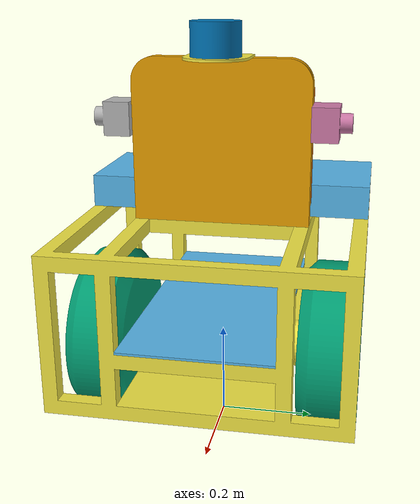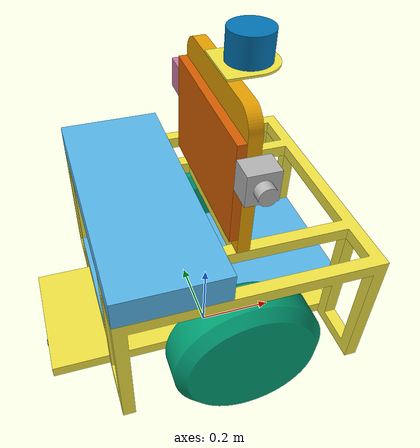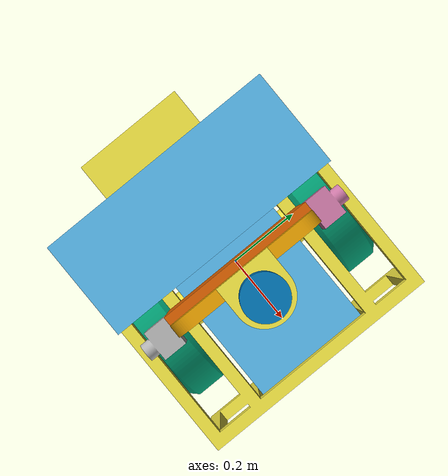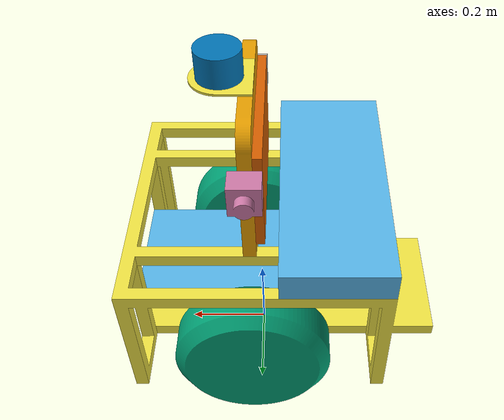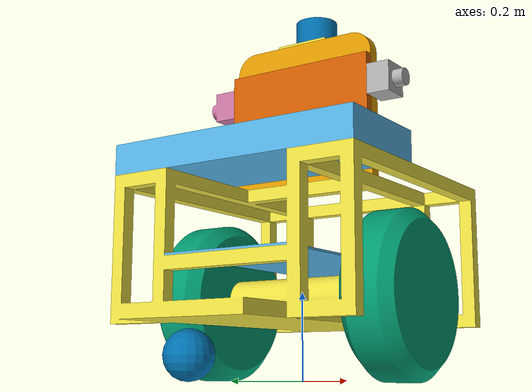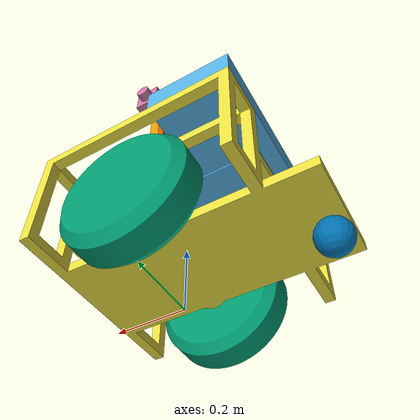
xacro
<?xml version='1.0' encoding='utf-8'?>
    <robot name="sirius">
    <link name="base_link"/>

    <joint name="base_link_to_Frame" type="fixed">
        <parent link="base_link"/>
        <child link="Frame"/>
        <!-- 上に455mm, Z軸で１８０度回転 -->
        <origin xyz="0 0 0.455" rpy="0 0 3.141592653589793"/>
    </joint>

    <link name="MDF">
        <inertial>
            <origin xyz="0.0 0.0 -0.1875" rpy="0.0 0.0 0.0" />
            <mass value="7.300499999999998" />
            <inertia ixx="0.058480046875000025" iyy="0.21903020937500006" izz="0.2774798375" ixy="0.0" iyz="1.4279066817834973e-18" ixz="1.4279066817834973e-18" />
        </inertial>
        <visual name="MDF_visual">
            <origin xyz="0.0 0.0 0.0" rpy="0.0 0.0 0.0" />
            <geometry>
                <mesh filename="package://Sirius_description/meshes/MDF.stl" scale="0.001 0.001 0.001" />
            </geometry>
        </visual>
        <collision name="MDF_collision">
            <origin xyz="0.0 0.0 0.0" rpy="0.0 0.0 0.0" />
            <geometry>
                <mesh filename="package://Sirius_description/meshes/MDF.stl" scale="0.001 0.001 0.001" />
            </geometry>
        </collision>
    </link>
    <link name="Right_Wheel">
        <inertial>
            <origin xyz="-2.4424906541753444e-17 3.552713678800501e-17 0.06249999999999993" rpy="0.0 -0.0 0.0" />
            <mass value="100.05890789374806" />
            <inertia ixx="0.9387204983052868" iyy="0.9387204983053428" izz="1.6349121401939106" ixy="1.9984014443252818e-15" iyz="0.0" ixz="-1.1102230246251565e-16" />
        </inertial>
        <visual name="Right_Wheel_visual">
            <origin xyz="0.015 -0.27 -0.18" rpy="1.5707963267948966 -0.0 0.0" />
            <geometry>
                <mesh filename="package://Sirius_description/meshes/Right_Wheel.stl" scale="0.001 0.001 0.001" />
            </geometry>
        </visual>
        <collision name="Right_Wheel_collision">
            <origin xyz="0.015 -0.27 -0.18" rpy="1.5707963267948966 -0.0 0.0" />
            <geometry>
                <mesh filename="package://Sirius_description/meshes/Right_Wheel.stl" scale="0.001 0.001 0.001" />
            </geometry>
        </collision>
    </link>
    <link name="LiDAR_Support">
        <inertial>
            <origin xyz="-0.052820883669245824 1.1537955902002506e-16 0.3425" rpy="0.0 0.0 0.0" />
            <mass value="0.3093933392343076" />
            <inertia ixx="0.0005861375596076246" iyy="0.000575193141818392" izz="0.0011600415625125382" ixy="-8.146523068880001e-19" iyz="-8.366640713575181e-19" ixz="-1.734723475976807e-18" />
        </inertial>
        <visual name="LiDAR_Support_visual">
            <origin xyz="0.0 0.0 0.0" rpy="0.0 0.0 0.0" />
            <geometry>
                <mesh filename="package://Sirius_description/meshes/LiDAR_Support.stl" scale="0.001 0.001 0.001" />
            </geometry>
        </visual>
        <collision name="LiDAR_Support_collision">
            <origin xyz="0.0 0.0 0.0" rpy="0.0 0.0 0.0" />
            <geometry>
                <mesh filename="package://Sirius_description/meshes/LiDAR_Support.stl" scale="0.001 0.001 0.001" />
            </geometry>
        </collision>
    </link>
    <link name="LiDAR">
        <inertial>
            <origin xyz="-0.07 -2.4125096250508447e-17 0.37599999999999995" rpy="0.0 0.0 0.0" />
            <mass value="4.439070419522379" />
            <inertia ixx="0.004692097433435238" iyy="0.004692097433435571" izz="0.005548838024402897" ixy="-1.0709300113376216e-18" iyz="-1.7134880181401884e-18" ixz="0.0" />
        </inertial>
        <visual name="LiDAR_visual">
            <origin xyz="0.0 0.0 0.0" rpy="0.0 0.0 0.0" />
            <geometry>
                <mesh filename="package://Sirius_description/meshes/LiDAR.stl" scale="0.001 0.001 0.001" />
            </geometry>
        </visual>
        <collision name="LiDAR_collision">
            <origin xyz="0.0 0.0 0.0" rpy="0.0 0.0 0.0" />
            <geometry>
                <mesh filename="package://Sirius_description/meshes/LiDAR.stl" scale="0.001 0.001 0.001" />
            </geometry>
        </collision>
    </link>
    <link name="Display">
        <inertial>
            <origin xyz="0.009999999999999998 0.0 0.16" rpy="0.0 0.0 0.0" />
            <mass value="13.941599999999996" />
            <inertia ixx="0.22597009999999979" iyy="0.06738439999999996" izz="0.1595151399999998" ixy="0.0" iyz="4.5693013817071915e-17" ixz="3.469446951953614e-18" />
        </inertial>
        <visual name="Display_visual">
            <origin xyz="0.0 0.0 0.0" rpy="0.0 0.0 0.0" />
            <geometry>
                <mesh filename="package://Sirius_description/meshes/Display.stl" scale="0.001 0.001 0.001" />
            </geometry>
        </visual>
        <collision name="Display_collision">
            <origin xyz="0.0 0.0 0.0" rpy="0.0 0.0 0.0" />
            <geometry>
                <mesh filename="package://Sirius_description/meshes/Display.stl" scale="0.001 0.001 0.001" />
            </geometry>
        </collision>
    </link>
    <link name="Left_ESB">
        <inertial>
            <origin xyz="-0.014999999999999998 -0.21667604038411042 0.215" rpy="0.0 0.0 0.0" />
            <mass value="2.3621900233067987" />
            <inertia ixx="0.0017880560898025089" iyy="0.0017770425879946872" izz="0.0017880560898024533" ixy="0.0" iyz="0.0" ixz="-1.734723475976807e-18" />
        </inertial>
        <visual name="Left_ESB_visual">
            <origin xyz="0.0 0.0 0.0" rpy="0.0 0.0 0.0" />
            <geometry>
                <mesh filename="package://Sirius_description/meshes/Left_ESB.stl" scale="0.001 0.001 0.001" />
            </geometry>
        </visual>
        <collision name="Left_ESB_collision">
            <origin xyz="0.0 0.0 0.0" rpy="0.0 0.0 0.0" />
            <geometry>
                <mesh filename="package://Sirius_description/meshes/Left_ESB.stl" scale="0.001 0.001 0.001" />
            </geometry>
        </collision>
    </link>
    <link name="Right_ESB">
        <inertial>
            <origin xyz="-0.014999999999999998 0.21667604038411042 0.215" rpy="0.0 0.0 0.0" />
            <mass value="2.3621900233067987" />
            <inertia ixx="0.0017880560898025089" iyy="0.0017770425879946872" izz="0.001788056089802481" ixy="-1.734723475976807e-18" iyz="0.0" ixz="-1.734723475976807e-18" />
        </inertial>
        <visual name="Right_ESB_visual">
            <origin xyz="0.0 0.0 0.0" rpy="0.0 0.0 0.0" />
            <geometry>
                <mesh filename="package://Sirius_description/meshes/Right_ESB.stl" scale="0.001 0.001 0.001" />
            </geometry>
        </visual>
        <collision name="Right_ESB_collision">
            <origin xyz="0.0 0.0 0.0" rpy="0.0 0.0 0.0" />
            <geometry>
                <mesh filename="package://Sirius_description/meshes/Right_ESB.stl" scale="0.001 0.001 0.001" />
            </geometry>
        </collision>
    </link>
    <link name="Display_Bg">
        <inertial>
            <origin xyz="-0.014999999999999998 0.0 0.16863359351883772" rpy="0.0 0.0 0.0" />
            <mass value="29.373206337400482" />
            <inertia ixx="0.6092684729448462" iyy="0.2811472839601523" izz="0.3325271699353042" ixy="2.2846506908535957e-17" iyz="0.0" ixz="1.3877787807814457e-17" />
        </inertial>
        <visual name="Display_Bg_visual">
            <origin xyz="0.0 0.0 0.0" rpy="0.0 0.0 0.0" />
            <geometry>
                <mesh filename="package://Sirius_description/meshes/Display_Bg.stl" scale="0.001 0.001 0.001" />
            </geometry>
        </visual>
        <collision name="Display_Bg_collision">
            <origin xyz="0.0 0.0 0.0" rpy="0.0 0.0 0.0" />
            <geometry>
                <mesh filename="package://Sirius_description/meshes/Display_Bg.stl" scale="0.001 0.001 0.001" />
            </geometry>
        </collision>
    </link>
    <link name="Case">
        <inertial>
            <origin xyz="0.17500000000000002 0.0 0.035" rpy="0.0 0.0 0.0" />
            <mass value="83.79874999999998" />
            <inertia ixx="2.6326773958333343" iyy="0.47066964583333304" izz="3.034911395833333" ixy="0.0" iyz="-1.8277205526828766e-16" ixz="1.1102230246251565e-16" />
        </inertial>
        <visual name="Case_visual">
            <origin xyz="0.0 0.0 0.0" rpy="0.0 0.0 0.0" />
            <geometry>
                <mesh filename="package://Sirius_description/meshes/Case.stl" scale="0.001 0.001 0.001" />
            </geometry>
        </visual>
        <collision name="Case_collision">
            <origin xyz="0.0 0.0 0.0" rpy="0.0 0.0 0.0" />
            <geometry>
                <mesh filename="package://Sirius_description/meshes/Case.stl" scale="0.001 0.001 0.001" />
            </geometry>
        </collision>
    </link>
    <link name="Left_Wheel">
        <inertial>
            <origin xyz="-2.4424906541753444e-17 -3.552713678800501e-17 0.0625" rpy="0.0 -0.0 0.0" />
            <mass value="100.05890789374806" />
            <inertia ixx="0.9387204983052886" iyy="0.9387204983053437" izz="1.6349121401939106" ixy="-1.9984014443252818e-15" iyz="-2.6645352591003757e-15" ixz="-5.551115123125783e-17" />
        </inertial>
        <visual name="Left_Wheel_visual">
            <origin xyz="0.015 0.27 -0.18" rpy="-1.5707963267948966 -0.0 0.0" />
            <geometry>
                <mesh filename="package://Sirius_description/meshes/Left_Wheel.stl" scale="0.001 0.001 0.001" />
            </geometry>
        </visual>
        <collision name="Left_Wheel_collision">
            <origin xyz="0.015 0.27 -0.18" rpy="-1.5707963267948966 -0.0 0.0" />
            <geometry>
                <mesh filename="package://Sirius_description/meshes/Left_Wheel.stl" scale="0.001 0.001 0.001" />
            </geometry>
        </collision>
    </link>
    <link name="Frame">
        <inertial>
            <origin xyz="0.02336046562605979 -3.391591384159738e-16 -0.22499410556332286" rpy="0.0 0.0 0.0" />
            <mass value="121.25196634073023" />
            <inertia ixx="4.632371381951651" iyy="7.237356930641641" izz="8.42852456545905" ixy="-2.4355492145103126e-14" iyz="-9.826421981859261e-16" ixz="0.4667578254363328" />
        </inertial>
        <visual name="Frame_visual">
            <origin xyz="0.0 0.0 0.0" rpy="0.0 0.0 0.0" />
            <geometry>
                <mesh filename="package://Sirius_description/meshes/Frame.stl" scale="0.001 0.001 0.001" />
            </geometry>
        </visual>
        <collision name="Frame_collision">
            <origin xyz="0.0 0.0 0.0" rpy="0.0 0.0 0.0" />
            <geometry>
                <mesh filename="package://Sirius_description/meshes/Frame.stl" scale="0.001 0.001 0.001" />
            </geometry>
        </collision>
    </link>
    <joint name="Frame_to_Case" type="fixed">
        <origin xyz="0.0 0.0 0.0" rpy="0.0 0.0 0.0" />
        <parent link="Frame" />
        <child link="Case" />
    </joint>
    <joint name="Frame_to_Display" type="fixed">
        <origin xyz="0.0 0.0 0.0" rpy="0.0 0.0 0.0" />
        <parent link="Frame" />
        <child link="Display" />
    </joint>
    <joint name="Frame_to_Display_Bg" type="fixed">
        <origin xyz="0.0 0.0 0.0" rpy="0.0 0.0 0.0" />
        <parent link="Frame" />
        <child link="Display_Bg" />
    </joint>
    <joint name="Frame_to_LiDAR_Support" type="fixed">
        <origin xyz="0.0 0.0 0.0" rpy="0.0 0.0 0.0" />
        <parent link="Frame" />
        <child link="LiDAR_Support" />
    </joint>
    <joint name="Frame_to_LiDAR" type="fixed">
        <origin xyz="0.0 0.0 0.0" rpy="0.0 0.0 0.0" />
        <parent link="Frame" />
        <child link="LiDAR" />
    </joint>
    <joint name="Frame_to_Left_ESB" type="fixed">
        <origin xyz="0.0 0.0 0.0" rpy="0.0 0.0 0.0" />
        <parent link="Frame" />
        <child link="Left_ESB" />
    </joint>
    <joint name="Frame_to_Right_ESB" type="fixed">
        <origin xyz="0.0 0.0 0.0" rpy="0.0 0.0 0.0" />
        <parent link="Frame" />
        <child link="Right_ESB" />
    </joint>
    <joint name="Frame_to_MDF" type="fixed">
        <origin xyz="0.0 0.0 0.0" rpy="0.0 0.0 0.0" />
        <parent link="Frame" />
        <child link="MDF" />
    </joint>

    <link name="Caster">
        <inertial>
            <origin xyz="0.0 0.0 0.0" rpy="0.0 0.0 0.0" />
            <mass value="1.0" />
            <inertia ixx="0.001" iyy="0.001" izz="0.001" ixy="0.0" iyz="0.0" ixz="0.0" />
        </inertial>
        <visual name="Caster_visual">
            <origin xyz="0.0 0.0 0.0" rpy="0.0 0.0 0.0" />
            <geometry>
                <sphere radius="0.05" />
            </geometry>
        </visual>
        <collision name="Caster_collision">
            <origin xyz="0.0 0.0 0.0" rpy="0.0 0.0 0.0" />
            <geometry>
                <sphere radius="0.05" />
            </geometry>
        </collision>
    </link>

    <joint name="Frame_to_Caster" type="continuous">
        <origin xyz="0.4 0.0 -0.40" rpy="0.0 0.0 0.0" />
        <parent link="Frame" />
        <child link="Caster" />
        <axis xyz="0 0 1" />
    </joint>
    <joint name="Frame_Revolute-5" type="continuous">
        <origin xyz="-0.015 -0.18 -0.27" rpy="1.5707963267948966 -0.0 0.0" />
        <parent link="Frame" />
        <child link="Left_Wheel" />
        <axis xyz="0.0 0.0 1.0" />
    </joint>
    <joint name="Frame_Revolute-6" type="continuous">
        <origin xyz="-0.015 0.18 -0.27" rpy="-1.5707963267948966 -0.0 0.0" />
        <parent link="Frame" />
        <child link="Right_Wheel" />
        <axis xyz="0.0 0.0 -1.0" />
    </joint>
</robot>
